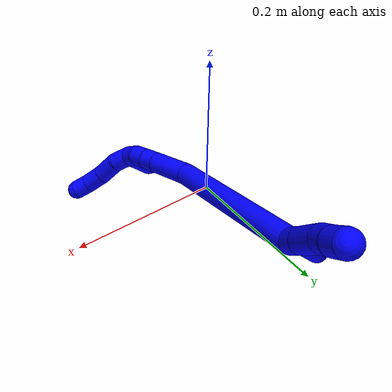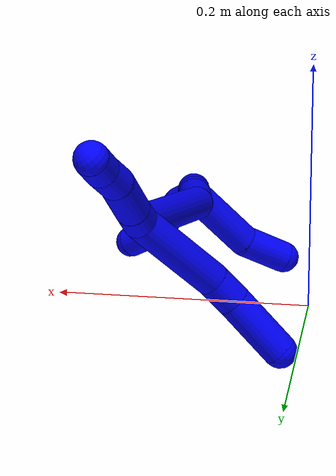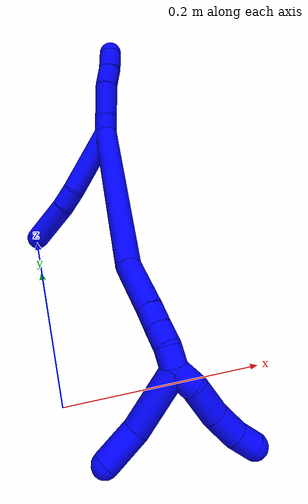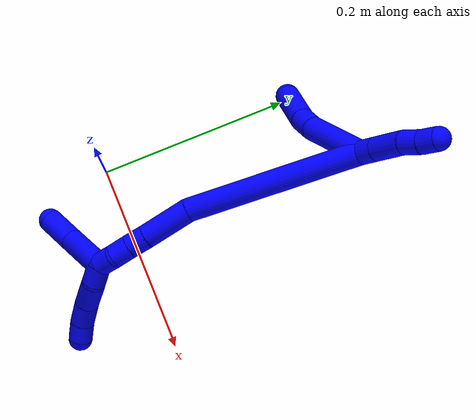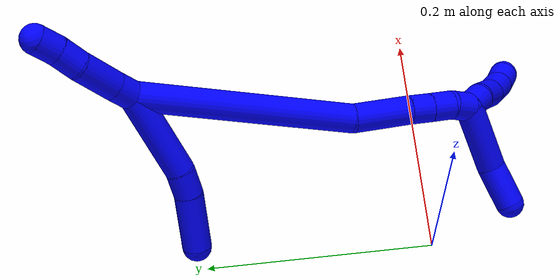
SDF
<sdf version="1.7">
 <world name="default">
  <model name="1">
   <static>0</static>
   <link name="1">
    <collision name="collision-cylinder-e_1_2_8">
     <pose>-0.003405 -0.006839 -0.03756 2.96149 -0.088949 -0.915842</pose>
     <geometry><cylinder><radius>0.0125</radius><length>0.076658</length></cylinder></geometry>
     <surface>
      <friction><ode><mu>1.16</mu><mu2>1.16</mu2><slip1>0</slip1><slip2>0</slip2></ode></friction>
      <contact><ode><kp>1e+06</kp><kd>1</kd><max_vel>0</max_vel><min_depth>0.001</min_depth></ode></contact>
     </surface>
    </collision>
    <visual name="visual-cylinder-e_1_2_8">
     <pose>-0.003405 -0.006839 -0.03756 2.96149 -0.088949 -0.915842</pose>
     <geometry><cylinder><radius>0.0125</radius><length>0.076658</length></cylinder></geometry>
     <material><ambient>0 0 1 1</ambient></material>
    </visual>
    <collision name="collision-cylinder-e_2_8_9">
     <pose>-0.007447 -0.013436 -0.086689 -3.12071 -0.055024 2.41632</pose>
     <geometry><cylinder><radius>0.0125</radius><length>0.023178</length></cylinder></geometry>
     <surface>
      <friction><ode><mu>1.16</mu><mu2>1.16</mu2><slip1>0</slip1><slip2>0</slip2></ode></friction>
      <contact><ode><kp>1e+06</kp><kd>1</kd><max_vel>0</max_vel><min_depth>0.001</min_depth></ode></contact>
     </surface>
    </collision>
    <visual name="visual-cylinder-e_2_8_9">
     <pose>-0.007447 -0.013436 -0.086689 -3.12071 -0.055024 2.41632</pose>
     <geometry><cylinder><radius>0.0125</radius><length>0.023178</length></cylinder></geometry>
     <material><ambient>0 0 1 1</ambient></material>
    </visual>
    <collision name="collision-cylinder-e_3_9_6">
     <pose>-0.009966 -0.008398 -0.122805 -2.94862 -0.075074 0.740277</pose>
     <geometry><cylinder><radius>0.0125</radius><length>0.050164</length></cylinder></geometry>
     <surface>
      <friction><ode><mu>1.16</mu><mu2>1.16</mu2><slip1>0</slip1><slip2>0</slip2></ode></friction>
      <contact><ode><kp>1e+06</kp><kd>1</kd><max_vel>0</max_vel><min_depth>0.001</min_depth></ode></contact>
     </surface>
    </collision>
    <visual name="visual-cylinder-e_3_9_6">
     <pose>-0.009966 -0.008398 -0.122805 -2.94862 -0.075074 0.740277</pose>
     <geometry><cylinder><radius>0.0125</radius><length>0.050164</length></cylinder></geometry>
     <material><ambient>0 0 1 1</ambient></material>
    </visual>
    <collision name="collision-cylinder-e_1_2_10">
     <pose>-0.002593 0.005342 0.008243 -0.574959 -0.258137 0.076712</pose>
     <geometry><cylinder><radius>0.0125</radius><length>0.020319</length></cylinder></geometry>
     <surface>
      <friction><ode><mu>1.16</mu><mu2>1.16</mu2><slip1>0</slip1><slip2>0</slip2></ode></friction>
      <contact><ode><kp>1e+06</kp><kd>1</kd><max_vel>0</max_vel><min_depth>0.001</min_depth></ode></contact>
     </surface>
    </collision>
    <visual name="visual-cylinder-e_1_2_10">
     <pose>-0.002593 0.005342 0.008243 -0.574959 -0.258137 0.076712</pose>
     <geometry><cylinder><radius>0.0125</radius><length>0.020319</length></cylinder></geometry>
     <material><ambient>0 0 1 1</ambient></material>
    </visual>
    <collision name="collision-cylinder-e_2_10_11">
     <pose>-0.010172 0.019956 0.031911 -0.5413 -0.270207 0.075395</pose>
     <geometry><cylinder><radius>0.0125</radius><length>0.037349</length></cylinder></geometry>
     <surface>
      <friction><ode><mu>1.16</mu><mu2>1.16</mu2><slip1>0</slip1><slip2>0</slip2></ode></friction>
      <contact><ode><kp>1e+06</kp><kd>1</kd><max_vel>0</max_vel><min_depth>0.001</min_depth></ode></contact>
     </surface>
    </collision>
    <visual name="visual-cylinder-e_2_10_11">
     <pose>-0.010172 0.019956 0.031911 -0.5413 -0.270207 0.075395</pose>
     <geometry><cylinder><radius>0.0125</radius><length>0.037349</length></cylinder></geometry>
     <material><ambient>0 0 1 1</ambient></material>
    </visual>
    <collision name="collision-cylinder-e_3_11_12">
     <pose>-0.016056 0.034698 0.056705 -0.528361 -0.082732 0.022391</pose>
     <geometry><cylinder><radius>0.0125</radius><length>0.021773</length></cylinder></geometry>
     <surface>
      <friction><ode><mu>1.16</mu><mu2>1.16</mu2><slip1>0</slip1><slip2>0</slip2></ode></friction>
      <contact><ode><kp>1e+06</kp><kd>1</kd><max_vel>0</max_vel><min_depth>0.001</min_depth></ode></contact>
     </surface>
    </collision>
    <visual name="visual-cylinder-e_3_11_12">
     <pose>-0.016056 0.034698 0.056705 -0.528361 -0.082732 0.022391</pose>
     <geometry><cylinder><radius>0.0125</radius><length>0.021773</length></cylinder></geometry>
     <material><ambient>0 0 1 1</ambient></material>
    </visual>
    <collision name="collision-cylinder-e_4_12_5">
     <pose>-0.018822 0.046057 0.074291 -0.621914 -0.182558 0.058818</pose>
     <geometry><cylinder><radius>0.0125</radius><length>0.020559</length></cylinder></geometry>
     <surface>
      <friction><ode><mu>1.16</mu><mu2>1.16</mu2><slip1>0</slip1><slip2>0</slip2></ode></friction>
      <contact><ode><kp>1e+06</kp><kd>1</kd><max_vel>0</max_vel><min_depth>0.001</min_depth></ode></contact>
     </surface>
    </collision>
    <visual name="visual-cylinder-e_4_12_5">
     <pose>-0.018822 0.046057 0.074291 -0.621914 -0.182558 0.058818</pose>
     <geometry><cylinder><radius>0.0125</radius><length>0.020559</length></cylinder></geometry>
     <material><ambient>0 0 1 1</ambient></material>
    </visual>
    <collision name="collision-cylinder-e_1_2_13">
     <pose>0.004398 -0.08212 -0.045089 2.07292 0.046907 0.07924</pose>
     <geometry><cylinder><radius>0.0125</radius><length>0.187575</length></cylinder></geometry>
     <surface>
      <friction><ode><mu>1.16</mu><mu2>1.16</mu2><slip1>0</slip1><slip2>0</slip2></ode></friction>
      <contact><ode><kp>1e+06</kp><kd>1</kd><max_vel>0</max_vel><min_depth>0.001</min_depth></ode></contact>
     </surface>
    </collision>
    <visual name="visual-cylinder-e_1_2_13">
     <pose>0.004398 -0.08212 -0.045089 2.07292 0.046907 0.07924</pose>
     <geometry><cylinder><radius>0.0125</radius><length>0.187575</length></cylinder></geometry>
     <material><ambient>0 0 1 1</ambient></material>
    </visual>
    <collision name="collision-cylinder-e_2_13_14">
     <pose>0.014165 -0.188273 -0.097991 1.88509 0.209364 0.287272</pose>
     <geometry><cylinder><radius>0.0125</radius><length>0.05167</length></cylinder></geometry>
     <surface>
      <friction><ode><mu>1.16</mu><mu2>1.16</mu2><slip1>0</slip1><slip2>0</slip2></ode></friction>
      <contact><ode><kp>1e+06</kp><kd>1</kd><max_vel>0</max_vel><min_depth>0.001</min_depth></ode></contact>
     </surface>
    </collision>
    <visual name="visual-cylinder-e_2_13_14">
     <pose>0.014165 -0.188273 -0.097991 1.88509 0.209364 0.287272</pose>
     <geometry><cylinder><radius>0.0125</radius><length>0.05167</length></cylinder></geometry>
     <material><ambient>0 0 1 1</ambient></material>
    </visual>
    <collision name="collision-cylinder-e_3_14_15">
     <pose>0.021581 -0.221595 -0.109204 1.92183 0.204062 0.290988</pose>
     <geometry><cylinder><radius>0.0125</radius><length>0.020203</length></cylinder></geometry>
     <surface>
      <friction><ode><mu>1.16</mu><mu2>1.16</mu2><slip1>0</slip1><slip2>0</slip2></ode></friction>
      <contact><ode><kp>1e+06</kp><kd>1</kd><max_vel>0</max_vel><min_depth>0.001</min_depth></ode></contact>
     </surface>
    </collision>
    <visual name="visual-cylinder-e_3_14_15">
     <pose>0.021581 -0.221595 -0.109204 1.92183 0.204062 0.290988</pose>
     <geometry><cylinder><radius>0.0125</radius><length>0.020203</length></cylinder></geometry>
     <material><ambient>0 0 1 1</ambient></material>
    </visual>
    <collision name="collision-cylinder-e_4_15_16">
     <pose>0.025864 -0.240231 -0.115928 1.91231 0.221627 0.312703</pose>
     <geometry><cylinder><radius>0.0125</radius><length>0.020338</length></cylinder></geometry>
     <surface>
      <friction><ode><mu>1.16</mu><mu2>1.16</mu2><slip1>0</slip1><slip2>0</slip2></ode></friction>
      <contact><ode><kp>1e+06</kp><kd>1</kd><max_vel>0</max_vel><min_depth>0.001</min_depth></ode></contact>
     </surface>
    </collision>
    <visual name="visual-cylinder-e_4_15_16">
     <pose>0.025864 -0.240231 -0.115928 1.91231 0.221627 0.312703</pose>
     <geometry><cylinder><radius>0.0125</radius><length>0.020338</length></cylinder></geometry>
     <material><ambient>0 0 1 1</ambient></material>
    </visual>
    <collision name="collision-cylinder-e_5_16_1">
     <pose>0.03152 -0.257153 -0.125001 2.22012 0.345338 0.675779</pose>
     <geometry><cylinder><radius>0.0125</radius><length>0.020214</length></cylinder></geometry>
     <surface>
      <friction><ode><mu>1.16</mu><mu2>1.16</mu2><slip1>0</slip1><slip2>0</slip2></ode></friction>
      <contact><ode><kp>1e+06</kp><kd>1</kd><max_vel>0</max_vel><min_depth>0.001</min_depth></ode></contact>
     </surface>
    </collision>
    <visual name="visual-cylinder-e_5_16_1">
     <pose>0.03152 -0.257153 -0.125001 2.22012 0.345338 0.675779</pose>
     <geometry><cylinder><radius>0.0125</radius><length>0.020214</length></cylinder></geometry>
     <material><ambient>0 0 1 1</ambient></material>
    </visual>
    <collision name="collision-cylinder-e_1_1_17">
     <pose>0.03271 -0.266622 -0.161558 3.08019 -0.072177 -1.73195</pose>
     <geometry><cylinder><radius>0.0125</radius><length>0.06189</length></cylinder></geometry>
     <surface>
      <friction><ode><mu>1.16</mu><mu2>1.16</mu2><slip1>0</slip1><slip2>0</slip2></ode></friction>
      <contact><ode><kp>1e+06</kp><kd>1</kd><max_vel>0</max_vel><min_depth>0.001</min_depth></ode></contact>
     </surface>
    </collision>
    <visual name="visual-cylinder-e_1_1_17">
     <pose>0.03271 -0.266622 -0.161558 3.08019 -0.072177 -1.73195</pose>
     <geometry><cylinder><radius>0.0125</radius><length>0.06189</length></cylinder></geometry>
     <material><ambient>0 0 1 1</ambient></material>
    </visual>
    <collision name="collision-cylinder-e_2_17_4">
     <pose>0.023385 -0.271298 -0.209829 2.98364 -0.381432 -2.36353</pose>
     <geometry><cylinder><radius>0.0125</radius><length>0.03811</length></cylinder></geometry>
     <surface>
      <friction><ode><mu>1.16</mu><mu2>1.16</mu2><slip1>0</slip1><slip2>0</slip2></ode></friction>
      <contact><ode><kp>1e+06</kp><kd>1</kd><max_vel>0</max_vel><min_depth>0.001</min_depth></ode></contact>
     </surface>
    </collision>
    <visual name="visual-cylinder-e_2_17_4">
     <pose>0.023385 -0.271298 -0.209829 2.98364 -0.381432 -2.36353</pose>
     <geometry><cylinder><radius>0.0125</radius><length>0.03811</length></cylinder></geometry>
     <material><ambient>0 0 1 1</ambient></material>
    </visual>
    <collision name="collision-cylinder-e_1_1_18">
     <pose>0.043856 -0.271275 -0.132752 1.86737 0.915927 1.17514</pose>
     <geometry><cylinder><radius>0.0125</radius><length>0.022479</length></cylinder></geometry>
     <surface>
      <friction><ode><mu>1.16</mu><mu2>1.16</mu2><slip1>0</slip1><slip2>0</slip2></ode></friction>
      <contact><ode><kp>1e+06</kp><kd>1</kd><max_vel>0</max_vel><min_depth>0.001</min_depth></ode></contact>
     </surface>
    </collision>
    <visual name="visual-cylinder-e_1_1_18">
     <pose>0.043856 -0.271275 -0.132752 1.86737 0.915927 1.17514</pose>
     <geometry><cylinder><radius>0.0125</radius><length>0.022479</length></cylinder></geometry>
     <material><ambient>0 0 1 1</ambient></material>
    </visual>
    <collision name="collision-cylinder-e_2_18_19">
     <pose>0.065259 -0.284528 -0.141349 2.34786 0.925222 1.74383</pose>
     <geometry><cylinder><radius>0.0125</radius><length>0.03127</length></cylinder></geometry>
     <surface>
      <friction><ode><mu>1.16</mu><mu2>1.16</mu2><slip1>0</slip1><slip2>0</slip2></ode></friction>
      <contact><ode><kp>1e+06</kp><kd>1</kd><max_vel>0</max_vel><min_depth>0.001</min_depth></ode></contact>
     </surface>
    </collision>
    <visual name="visual-cylinder-e_2_18_19">
     <pose>0.065259 -0.284528 -0.141349 2.34786 0.925222 1.74383</pose>
     <geometry><cylinder><radius>0.0125</radius><length>0.03127</length></cylinder></geometry>
     <material><ambient>0 0 1 1</ambient></material>
    </visual>
    <collision name="collision-cylinder-e_3_19_20">
     <pose>0.088719 -0.297533 -0.151362 2.06794 0.992283 1.47615</pose>
     <geometry><cylinder><radius>0.0125</radius><length>0.026207</length></cylinder></geometry>
     <surface>
      <friction><ode><mu>1.16</mu><mu2>1.16</mu2><slip1>0</slip1><slip2>0</slip2></ode></friction>
      <contact><ode><kp>1e+06</kp><kd>1</kd><max_vel>0</max_vel><min_depth>0.001</min_depth></ode></contact>
     </surface>
    </collision>
    <visual name="visual-cylinder-e_3_19_20">
     <pose>0.088719 -0.297533 -0.151362 2.06794 0.992283 1.47615</pose>
     <geometry><cylinder><radius>0.0125</radius><length>0.026207</length></cylinder></geometry>
     <material><ambient>0 0 1 1</ambient></material>
    </visual>
    <collision name="collision-cylinder-e_4_20_3">
     <pose>0.108488 -0.308583 -0.155446 1.71032 1.07138 1.19813</pose>
     <geometry><cylinder><radius>0.0125</radius><length>0.020044</length></cylinder></geometry>
     <surface>
      <friction><ode><mu>1.16</mu><mu2>1.16</mu2><slip1>0</slip1><slip2>0</slip2></ode></friction>
      <contact><ode><kp>1e+06</kp><kd>1</kd><max_vel>0</max_vel><min_depth>0.001</min_depth></ode></contact>
     </surface>
    </collision>
    <visual name="visual-cylinder-e_4_20_3">
     <pose>0.108488 -0.308583 -0.155446 1.71032 1.07138 1.19813</pose>
     <geometry><cylinder><radius>0.0125</radius><length>0.020044</length></cylinder></geometry>
     <material><ambient>0 0 1 1</ambient></material>
    </visual>
    <collision name="collision-sphere-3">
     <pose>0.117286 -0.313336 -0.156114 0 -0 0</pose>
     <geometry><sphere><radius>0.0125</radius></sphere></geometry>
     <surface>
      <friction><ode><mu>1.16</mu><mu2>1.16</mu2><slip1>0</slip1><slip2>0</slip2></ode></friction>
      <contact><ode><kp>1e+06</kp><kd>1</kd><max_vel>0</max_vel><min_depth>0.001</min_depth></ode></contact>
     </surface>
    </collision>
    <visual name="visual-sphere-3">
     <pose>0.117286 -0.313336 -0.156114 0 -0 0</pose>
     <geometry><sphere><radius>0.0125</radius></sphere></geometry>
     <material><ambient>0 0 1 1</ambient></material>
    </visual>
    <collision name="collision-sphere-20">
     <pose>0.09969 -0.30383 -0.154779 0 -0 0</pose>
     <geometry><sphere><radius>0.0125</radius></sphere></geometry>
     <surface>
      <friction><ode><mu>1.16</mu><mu2>1.16</mu2><slip1>0</slip1><slip2>0</slip2></ode></friction>
      <contact><ode><kp>1e+06</kp><kd>1</kd><max_vel>0</max_vel><min_depth>0.001</min_depth></ode></contact>
     </surface>
    </collision>
    <visual name="visual-sphere-20">
     <pose>0.09969 -0.30383 -0.154779 0 -0 0</pose>
     <geometry><sphere><radius>0.0125</radius></sphere></geometry>
     <material><ambient>0 0 1 1</ambient></material>
    </visual>
    <collision name="collision-sphere-19">
     <pose>0.077747 -0.291235 -0.147945 0 -0 0</pose>
     <geometry><sphere><radius>0.0125</radius></sphere></geometry>
     <surface>
      <friction><ode><mu>1.16</mu><mu2>1.16</mu2><slip1>0</slip1><slip2>0</slip2></ode></friction>
      <contact><ode><kp>1e+06</kp><kd>1</kd><max_vel>0</max_vel><min_depth>0.001</min_depth></ode></contact>
     </surface>
    </collision>
    <visual name="visual-sphere-19">
     <pose>0.077747 -0.291235 -0.147945 0 -0 0</pose>
     <geometry><sphere><radius>0.0125</radius></sphere></geometry>
     <material><ambient>0 0 1 1</ambient></material>
    </visual>
    <collision name="collision-sphere-11">
     <pose>-0.015157 0.029229 0.047335 0 -0 0</pose>
     <geometry><sphere><radius>0.0125</radius></sphere></geometry>
     <surface>
      <friction><ode><mu>1.16</mu><mu2>1.16</mu2><slip1>0</slip1><slip2>0</slip2></ode></friction>
      <contact><ode><kp>1e+06</kp><kd>1</kd><max_vel>0</max_vel><min_depth>0.001</min_depth></ode></contact>
     </surface>
    </collision>
    <visual name="visual-sphere-11">
     <pose>-0.015157 0.029229 0.047335 0 -0 0</pose>
     <geometry><sphere><radius>0.0125</radius></sphere></geometry>
     <material><ambient>0 0 1 1</ambient></material>
    </visual>
    <collision name="collision-sphere-10">
     <pose>-0.005187 0.010683 0.016487 0 -0 0</pose>
     <geometry><sphere><radius>0.0125</radius></sphere></geometry>
     <surface>
      <friction><ode><mu>1.16</mu><mu2>1.16</mu2><slip1>0</slip1><slip2>0</slip2></ode></friction>
      <contact><ode><kp>1e+06</kp><kd>1</kd><max_vel>0</max_vel><min_depth>0.001</min_depth></ode></contact>
     </surface>
    </collision>
    <visual name="visual-sphere-10">
     <pose>-0.005187 0.010683 0.016487 0 -0 0</pose>
     <geometry><sphere><radius>0.0125</radius></sphere></geometry>
     <material><ambient>0 0 1 1</ambient></material>
    </visual>
    <collision name="collision-sphere-6">
     <pose>-0.011847 -0.003601 -0.147352 0 -0 0</pose>
     <geometry><sphere><radius>0.0125</radius></sphere></geometry>
     <surface>
      <friction><ode><mu>1.16</mu><mu2>1.16</mu2><slip1>0</slip1><slip2>0</slip2></ode></friction>
      <contact><ode><kp>1e+06</kp><kd>1</kd><max_vel>0</max_vel><min_depth>0.001</min_depth></ode></contact>
     </surface>
    </collision>
    <visual name="visual-sphere-6">
     <pose>-0.011847 -0.003601 -0.147352 0 -0 0</pose>
     <geometry><sphere><radius>0.0125</radius></sphere></geometry>
     <material><ambient>0 0 1 1</ambient></material>
    </visual>
    <collision name="collision-sphere-9">
     <pose>-0.008084 -0.013195 -0.098257 0 -0 0</pose>
     <geometry><sphere><radius>0.0125</radius></sphere></geometry>
     <surface>
      <friction><ode><mu>1.16</mu><mu2>1.16</mu2><slip1>0</slip1><slip2>0</slip2></ode></friction>
      <contact><ode><kp>1e+06</kp><kd>1</kd><max_vel>0</max_vel><min_depth>0.001</min_depth></ode></contact>
     </surface>
    </collision>
    <visual name="visual-sphere-9">
     <pose>-0.008084 -0.013195 -0.098257 0 -0 0</pose>
     <geometry><sphere><radius>0.0125</radius></sphere></geometry>
     <material><ambient>0 0 1 1</ambient></material>
    </visual>
    <collision name="collision-sphere-2">
     <geometry><sphere><radius>0.0125</radius></sphere></geometry>
     <surface>
      <friction><ode><mu>1.16</mu><mu2>1.16</mu2><slip1>0</slip1><slip2>0</slip2></ode></friction>
      <contact><ode><kp>1e+06</kp><kd>1</kd><max_vel>0</max_vel><min_depth>0.001</min_depth></ode></contact>
     </surface>
    </collision>
    <visual name="visual-sphere-2">
     <geometry><sphere><radius>0.0125</radius></sphere></geometry>
     <material><ambient>0 0 1 1</ambient></material>
    </visual>
    <collision name="collision-sphere-8">
     <pose>-0.00681 -0.013678 -0.07512 0 -0 0</pose>
     <geometry><sphere><radius>0.0125</radius></sphere></geometry>
     <surface>
      <friction><ode><mu>1.16</mu><mu2>1.16</mu2><slip1>0</slip1><slip2>0</slip2></ode></friction>
      <contact><ode><kp>1e+06</kp><kd>1</kd><max_vel>0</max_vel><min_depth>0.001</min_depth></ode></contact>
     </surface>
    </collision>
    <visual name="visual-sphere-8">
     <pose>-0.00681 -0.013678 -0.07512 0 -0 0</pose>
     <geometry><sphere><radius>0.0125</radius></sphere></geometry>
     <material><ambient>0 0 1 1</ambient></material>
    </visual>
    <collision name="collision-sphere-12">
     <pose>-0.016956 0.040168 0.066074 0 -0 0</pose>
     <geometry><sphere><radius>0.0125</radius></sphere></geometry>
     <surface>
      <friction><ode><mu>1.16</mu><mu2>1.16</mu2><slip1>0</slip1><slip2>0</slip2></ode></friction>
      <contact><ode><kp>1e+06</kp><kd>1</kd><max_vel>0</max_vel><min_depth>0.001</min_depth></ode></contact>
     </surface>
    </collision>
    <visual name="visual-sphere-12">
     <pose>-0.016956 0.040168 0.066074 0 -0 0</pose>
     <geometry><sphere><radius>0.0125</radius></sphere></geometry>
     <material><ambient>0 0 1 1</ambient></material>
    </visual>
    <collision name="collision-sphere-5">
     <pose>-0.020688 0.051946 0.082507 0 -0 0</pose>
     <geometry><sphere><radius>0.0125</radius></sphere></geometry>
     <surface>
      <friction><ode><mu>1.16</mu><mu2>1.16</mu2><slip1>0</slip1><slip2>0</slip2></ode></friction>
      <contact><ode><kp>1e+06</kp><kd>1</kd><max_vel>0</max_vel><min_depth>0.001</min_depth></ode></contact>
     </surface>
    </collision>
    <visual name="visual-sphere-5">
     <pose>-0.020688 0.051946 0.082507 0 -0 0</pose>
     <geometry><sphere><radius>0.0125</radius></sphere></geometry>
     <material><ambient>0 0 1 1</ambient></material>
    </visual>
    <collision name="collision-sphere-13">
     <pose>0.008795 -0.16424 -0.090178 0 -0 0</pose>
     <geometry><sphere><radius>0.0125</radius></sphere></geometry>
     <surface>
      <friction><ode><mu>1.16</mu><mu2>1.16</mu2><slip1>0</slip1><slip2>0</slip2></ode></friction>
      <contact><ode><kp>1e+06</kp><kd>1</kd><max_vel>0</max_vel><min_depth>0.001</min_depth></ode></contact>
     </surface>
    </collision>
    <visual name="visual-sphere-13">
     <pose>0.008795 -0.16424 -0.090178 0 -0 0</pose>
     <geometry><sphere><radius>0.0125</radius></sphere></geometry>
     <material><ambient>0 0 1 1</ambient></material>
    </visual>
    <collision name="collision-sphere-14">
     <pose>0.019534 -0.212306 -0.105803 0 -0 0</pose>
     <geometry><sphere><radius>0.0125</radius></sphere></geometry>
     <surface>
      <friction><ode><mu>1.16</mu><mu2>1.16</mu2><slip1>0</slip1><slip2>0</slip2></ode></friction>
      <contact><ode><kp>1e+06</kp><kd>1</kd><max_vel>0</max_vel><min_depth>0.001</min_depth></ode></contact>
     </surface>
    </collision>
    <visual name="visual-sphere-14">
     <pose>0.019534 -0.212306 -0.105803 0 -0 0</pose>
     <geometry><sphere><radius>0.0125</radius></sphere></geometry>
     <material><ambient>0 0 1 1</ambient></material>
    </visual>
    <collision name="collision-sphere-15">
     <pose>0.023628 -0.230884 -0.112606 0 -0 0</pose>
     <geometry><sphere><radius>0.0125</radius></sphere></geometry>
     <surface>
      <friction><ode><mu>1.16</mu><mu2>1.16</mu2><slip1>0</slip1><slip2>0</slip2></ode></friction>
      <contact><ode><kp>1e+06</kp><kd>1</kd><max_vel>0</max_vel><min_depth>0.001</min_depth></ode></contact>
     </surface>
    </collision>
    <visual name="visual-sphere-15">
     <pose>0.023628 -0.230884 -0.112606 0 -0 0</pose>
     <geometry><sphere><radius>0.0125</radius></sphere></geometry>
     <material><ambient>0 0 1 1</ambient></material>
    </visual>
    <collision name="collision-sphere-16">
     <pose>0.028099 -0.249579 -0.119251 0 -0 0</pose>
     <geometry><sphere><radius>0.0125</radius></sphere></geometry>
     <surface>
      <friction><ode><mu>1.16</mu><mu2>1.16</mu2><slip1>0</slip1><slip2>0</slip2></ode></friction>
      <contact><ode><kp>1e+06</kp><kd>1</kd><max_vel>0</max_vel><min_depth>0.001</min_depth></ode></contact>
     </surface>
    </collision>
    <visual name="visual-sphere-16">
     <pose>0.028099 -0.249579 -0.119251 0 -0 0</pose>
     <geometry><sphere><radius>0.0125</radius></sphere></geometry>
     <material><ambient>0 0 1 1</ambient></material>
    </visual>
    <collision name="collision-sphere-1">
     <pose>0.034942 -0.264728 -0.130751 0 -0 0</pose>
     <geometry><sphere><radius>0.0125</radius></sphere></geometry>
     <surface>
      <friction><ode><mu>1.16</mu><mu2>1.16</mu2><slip1>0</slip1><slip2>0</slip2></ode></friction>
      <contact><ode><kp>1e+06</kp><kd>1</kd><max_vel>0</max_vel><min_depth>0.001</min_depth></ode></contact>
     </surface>
    </collision>
    <visual name="visual-sphere-1">
     <pose>0.034942 -0.264728 -0.130751 0 -0 0</pose>
     <geometry><sphere><radius>0.0125</radius></sphere></geometry>
     <material><ambient>0 0 1 1</ambient></material>
    </visual>
    <collision name="collision-sphere-18">
     <pose>0.05277 -0.277821 -0.134752 0 -0 0</pose>
     <geometry><sphere><radius>0.0125</radius></sphere></geometry>
     <surface>
      <friction><ode><mu>1.16</mu><mu2>1.16</mu2><slip1>0</slip1><slip2>0</slip2></ode></friction>
      <contact><ode><kp>1e+06</kp><kd>1</kd><max_vel>0</max_vel><min_depth>0.001</min_depth></ode></contact>
     </surface>
    </collision>
    <visual name="visual-sphere-18">
     <pose>0.05277 -0.277821 -0.134752 0 -0 0</pose>
     <geometry><sphere><radius>0.0125</radius></sphere></geometry>
     <material><ambient>0 0 1 1</ambient></material>
    </visual>
    <collision name="collision-sphere-17">
     <pose>0.030479 -0.268516 -0.192364 0 -0 0</pose>
     <geometry><sphere><radius>0.0125</radius></sphere></geometry>
     <surface>
      <friction><ode><mu>1.16</mu><mu2>1.16</mu2><slip1>0</slip1><slip2>0</slip2></ode></friction>
      <contact><ode><kp>1e+06</kp><kd>1</kd><max_vel>0</max_vel><min_depth>0.001</min_depth></ode></contact>
     </surface>
    </collision>
    <visual name="visual-sphere-17">
     <pose>0.030479 -0.268516 -0.192364 0 -0 0</pose>
     <geometry><sphere><radius>0.0125</radius></sphere></geometry>
     <material><ambient>0 0 1 1</ambient></material>
    </visual>
    <collision name="collision-sphere-4">
     <pose>0.016292 -0.27408 -0.227295 0 -0 0</pose>
     <geometry><sphere><radius>0.0125</radius></sphere></geometry>
     <surface>
      <friction><ode><mu>1.16</mu><mu2>1.16</mu2><slip1>0</slip1><slip2>0</slip2></ode></friction>
      <contact><ode><kp>1e+06</kp><kd>1</kd><max_vel>0</max_vel><min_depth>0.001</min_depth></ode></contact>
     </surface>
    </collision>
    <visual name="visual-sphere-4">
     <pose>0.016292 -0.27408 -0.227295 0 -0 0</pose>
     <geometry><sphere><radius>0.0125</radius></sphere></geometry>
     <material><ambient>0 0 1 1</ambient></material>
    </visual>
    <inertial>
     <pose>0.015327 -0.125615 -0.080028 0 -0 0</pose>
     <mass>0.75</mass>
     <inertia>
      <ixx>0.000619</ixx>
      <ixy>0</ixy>
      <ixz>0</ixz>
      <iyy>-0.000292</iyy>
      <iyz>0</iyz>
      <izz>0.000459</izz>
     </inertia>
    </inertial>
   </link>
   <pose>0.097218 0.244116 0.157547 -0.190029 0.653061 0.068048</pose>
  </model>
 </world>
</sdf>
